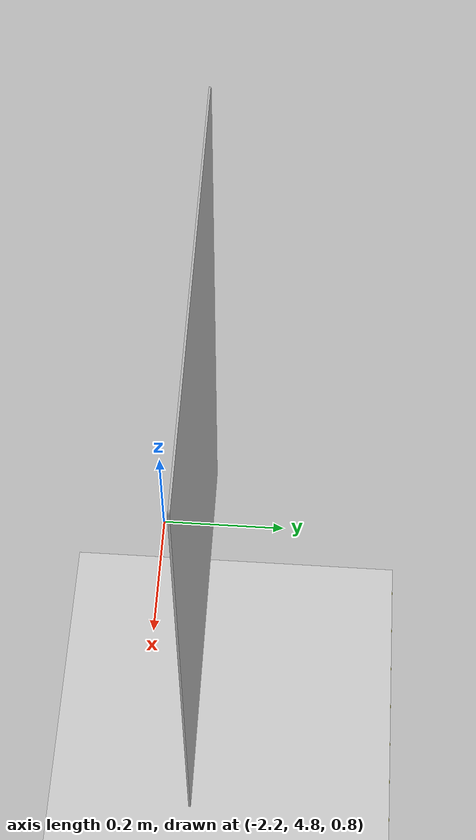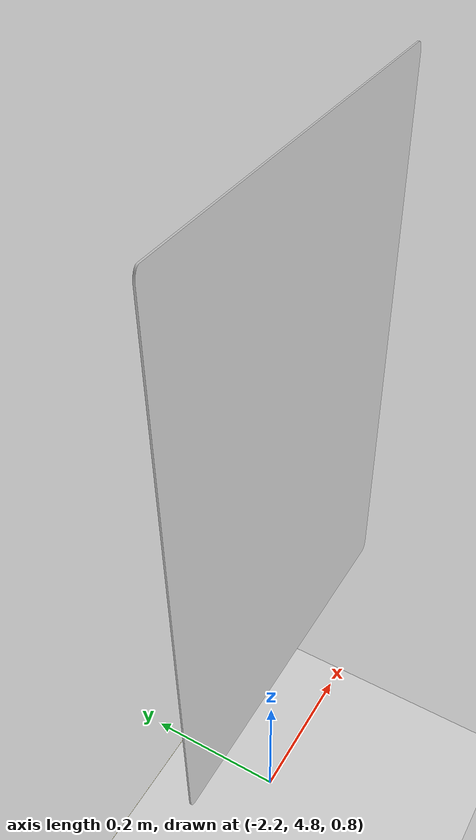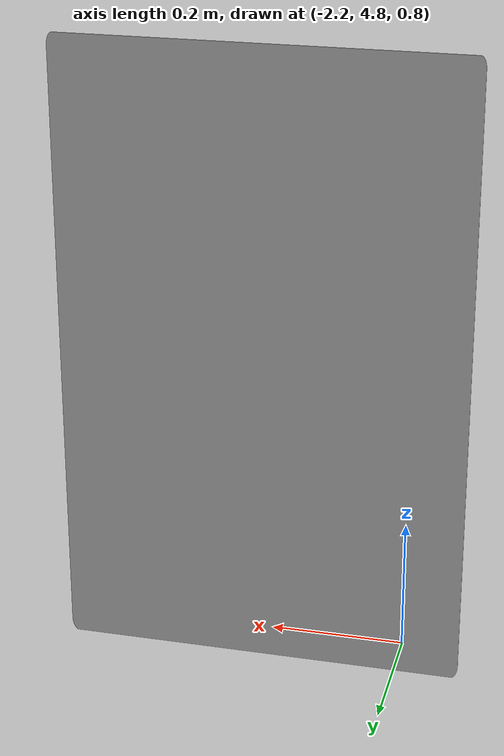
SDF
<sdf version="1.6">
 <world name="default">
  <model name="ground_plane">
   <static>1</static>
   <link name="link">
    <collision name="collision">
     <geometry><plane><normal>0 0 1</normal><size>100 100</size></plane></geometry>
     <surface><friction><ode><mu>100</mu><mu2>50</mu2></ode></friction></surface>
    </collision>
    <visual name="visual">
     <cast_shadows>0</cast_shadows>
     <geometry><plane><normal>0 0 1</normal><size>100 100</size></plane></geometry>
     <material>
      <script><uri>file://media/materials/scripts/gazebo.material</uri><name>Gazebo/Grey</name></script>
     </material>
    </visual>
   </link>
  </model>
  <model name="line3200cm">
   <link name="link_4">
    <inertial>
     <mass>1</mass>
     <inertia>
      <ixx>0.166667</ixx>
      <ixy>0</ixy>
      <ixz>0</ixz>
      <iyy>0.166667</iyy>
      <iyz>0</iyz>
      <izz>0.166667</izz>
     </inertia>
    </inertial>
    <visual name="visual">
     <pose>0 0 0 0 -0 1.5708</pose>
     <geometry><box><size>0.05 32 0.001</size></box></geometry>
     <material>
      <lighting>1</lighting>
      <script><uri>file://media/materials/scripts/gazebo.material</uri><name>Gazebo/Yellow</name></script>
     </material>
    </visual>
    <collision name="collision">
     <pose>0 0 0 0 -0 1.5708</pose>
     <geometry><box><size>0.05 32 1e-05</size></box></geometry>
     <surface>
      <friction>
       <ode><mu>1</mu><mu2>1</mu2><fdir1>0 0 0</fdir1><slip1>0</slip1><slip2>0</slip2></ode>
       <torsional>
        <coefficient>1</coefficient>
        <patch_radius>0</patch_radius>
        <surface_radius>0</surface_radius>
        <use_patch_radius>1</use_patch_radius>
        <ode><slip>0</slip></ode>
       </torsional>
      </friction>
      <bounce><restitution_coefficient>0</restitution_coefficient><threshold>1e+06</threshold></bounce>
      <contact>
       <collide_without_contact>0</collide_without_contact>
       <collide_without_contact_bitmask>1</collide_without_contact_bitmask>
       <collide_bitmask>1</collide_bitmask>
       <ode>
        <soft_cfm>0</soft_cfm>
        <soft_erp>0.2</soft_erp>
        <kp>1e+13</kp>
        <kd>1</kd>
        <max_vel>0.01</max_vel>
        <min_depth>0</min_depth>
       </ode>
       <bullet>
        <split_impulse>1</split_impulse>
        <split_impulse_penetration_threshold>-0.01</split_impulse_penetration_threshold>
        <soft_cfm>0</soft_cfm>
        <soft_erp>0.2</soft_erp>
        <kp>1e+13</kp>
        <kd>1</kd>
       </bullet>
      </contact>
     </surface>
    </collision>
   </link>
   <static>1</static>
   <pose>-3.25 5.575 0 0 -0 0</pose>
  </model>
  <model name="120x90sign_sitesafety">
   <link name="link_0">
    <inertial>
     <mass>1</mass>
     <inertia>
      <ixx>0.166667</ixx>
      <ixy>0</ixy>
      <ixz>0</ixz>
      <iyy>0.166667</iyy>
      <iyz>0</iyz>
      <izz>0.166667</izz>
     </inertia>
    </inertial>
    <visual name="visual">
     <pose>-0.3 0 -0.45 0 -0 0</pose>
     <geometry>
      <mesh><uri>model://120x90sign_sitesafety/model/model.dae</uri><scale>2 1 4.4</scale></mesh>
     </geometry>
    </visual>
    <collision name="collision">
     <geometry><box><size>0.6 0.005 0.9</size></box></geometry>
     <surface>
      <friction>
       <ode><mu>1</mu><mu2>1</mu2><fdir1>0 0 0</fdir1><slip1>0</slip1><slip2>0</slip2></ode>
       <torsional>
        <coefficient>1</coefficient>
        <patch_radius>0</patch_radius>
        <surface_radius>0</surface_radius>
        <use_patch_radius>1</use_patch_radius>
        <ode><slip>0</slip></ode>
       </torsional>
      </friction>
      <bounce><restitution_coefficient>0</restitution_coefficient><threshold>1e+06</threshold></bounce>
      <contact>
       <collide_without_contact>0</collide_without_contact>
       <collide_without_contact_bitmask>1</collide_without_contact_bitmask>
       <collide_bitmask>1</collide_bitmask>
       <ode>
        <soft_cfm>0</soft_cfm>
        <soft_erp>0.2</soft_erp>
        <kp>1e+13</kp>
        <kd>1</kd>
        <max_vel>0.01</max_vel>
        <min_depth>0</min_depth>
       </ode>
       <bullet>
        <split_impulse>1</split_impulse>
        <split_impulse_penetration_threshold>-0.01</split_impulse_penetration_threshold>
        <soft_cfm>0</soft_cfm>
        <soft_erp>0.2</soft_erp>
        <kp>1e+13</kp>
        <kd>1</kd>
       </bullet>
      </contact>
     </surface>
    </collision>
   </link>
   <static>1</static>
   <pose>-2 4.88 1.25 0 -0 3.1415</pose>
  </model>
 </world>
</sdf>
